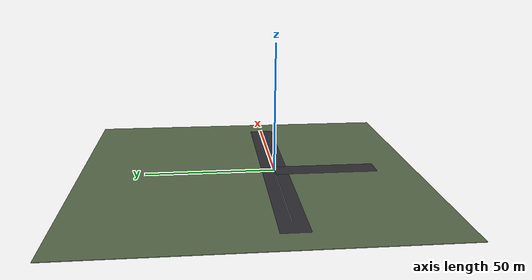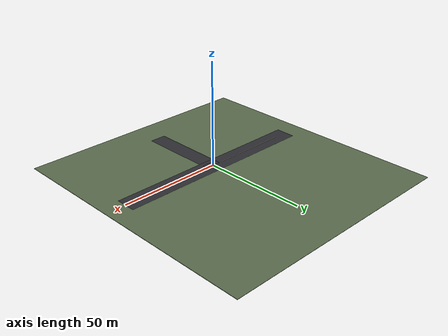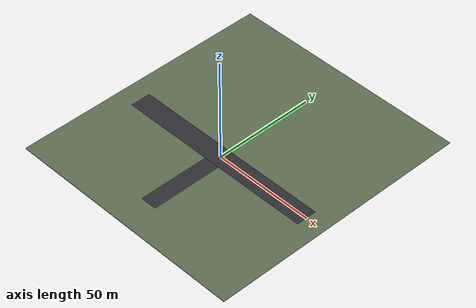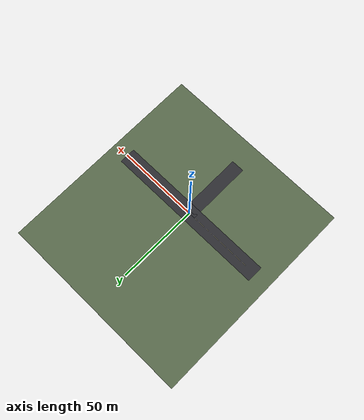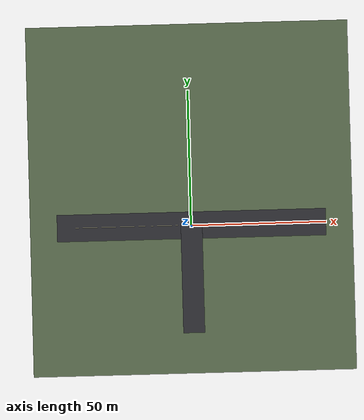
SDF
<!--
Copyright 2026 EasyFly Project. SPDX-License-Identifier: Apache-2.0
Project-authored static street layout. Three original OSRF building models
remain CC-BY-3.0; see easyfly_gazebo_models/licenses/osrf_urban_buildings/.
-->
<sdf version="1.6">
 <world name="default">
  <include><uri>model://sun</uri></include>
  <gravity>0 0 -9.8</gravity>
  <physics name="default_physics" type="ode">
   <max_step_size>0.001</max_step_size>
   <real_time_factor>1</real_time_factor>
   <real_time_update_rate>1000</real_time_update_rate>
  </physics>
  <scene>
   <ambient>0.7 0.7 0.7 1</ambient>
   <background>0.65 0.78 0.9 1</background>
   <shadows>false</shadows>
  </scene>
  <model name="urban_ground">
   <static>true</static>
   <pose>0 10 -0.1 0 0 0</pose>
   <link name="link">
    <collision name="collision">
     <geometry><box><size>120 130 0.2</size></box></geometry>
     <surface><friction><ode><mu>0.8</mu><mu2>0.8</mu2></ode></friction></surface>
    </collision>
    <visual name="visual">
     <geometry><box><size>120 130 0.2</size></box></geometry>
     <material><ambient>0.35 0.42 0.30 1</ambient><diffuse>0.35 0.42 0.30 1</diffuse></material>
    </visual>
   </link>
  </model>
  <model name="road_paint">
   <static>true</static>
   <link name="link">
    <visual name="main_road">
     <pose>0 0 0.0005 0 0 0</pose>
     <geometry><box><size>100 10 0.001</size></box></geometry>
     <material><ambient>0.18 0.18 0.20 1</ambient><diffuse>0.18 0.18 0.20 1</diffuse></material>
    </visual>
    <visual name="south_access">
     <pose>0 -20 0.0005 0 0 0</pose>
     <geometry><box><size>8 40 0.001</size></box></geometry>
     <material><ambient>0.18 0.18 0.20 1</ambient><diffuse>0.18 0.18 0.20 1</diffuse></material>
    </visual>
    <visual name="lane_west_outer">
     <pose>-30 0 0.0015 0 0 0</pose>
     <geometry><box><size>26 0.15 0.001</size></box></geometry>
     <material><ambient>0.95 0.92 0.72 1</ambient><diffuse>0.95 0.92 0.72 1</diffuse></material>
    </visual>
    <visual name="lane_west_inner">
     <pose>-10 0 0.0015 0 0 0</pose>
     <geometry><box><size>10 0.15 0.001</size></box></geometry>
     <material><ambient>0.95 0.92 0.72 1</ambient><diffuse>0.95 0.92 0.72 1</diffuse></material>
    </visual>
    <visual name="lane_east_inner">
     <pose>10 0 0.0015 0 0 0</pose>
     <geometry><box><size>10 0.15 0.001</size></box></geometry>
     <material><ambient>0.95 0.92 0.72 1</ambient><diffuse>0.95 0.92 0.72 1</diffuse></material>
    </visual>
    <visual name="lane_east_outer">
     <pose>30 0 0.0015 0 0 0</pose>
     <geometry><box><size>26 0.15 0.001</size></box></geometry>
     <material><ambient>0.95 0.92 0.72 1</ambient><diffuse>0.95 0.92 0.72 1</diffuse></material>
    </visual>
   </link>
  </model>
 </world>
</sdf>
